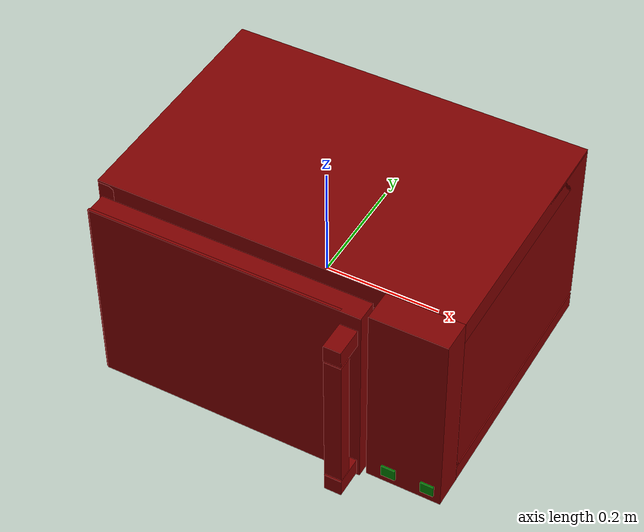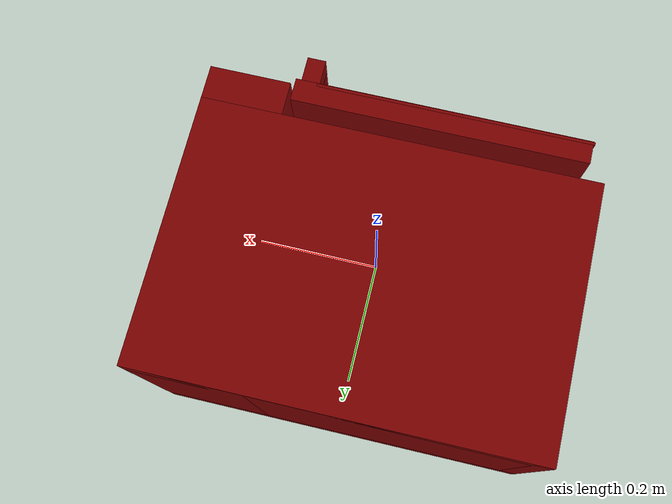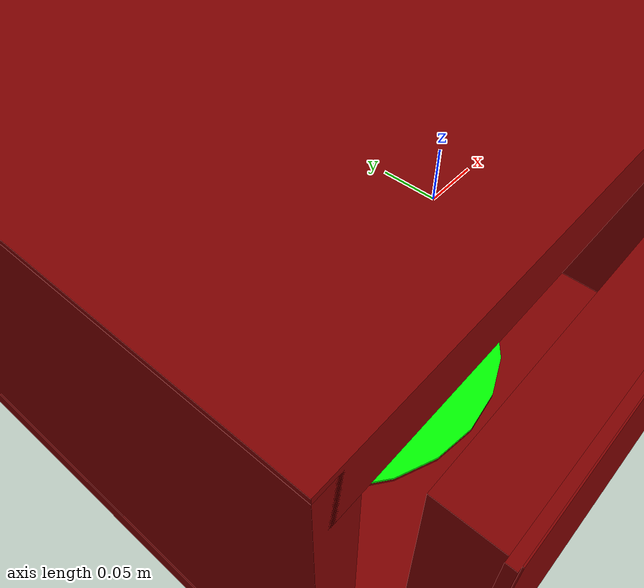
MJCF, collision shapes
<?xml version='1.0' encoding='UTF-8'?>
<mujoco model="model">
  <option timestep="0.002" gravity="0.0 0.0 -9.81"/>
  <compiler angle="radian"/>
  <asset>
    <mesh file="visuals/door.obj" name="door_vis"/>
    <mesh file="visuals/door_Clear.obj" name="door_Clear_vis"/>
    <mesh file="visuals/Body001.obj" name="Body001_vis"/>
    <mesh file="visuals/Disc001.obj" name="Disc001_vis"/>
    <texture file="visuals/T_BC001.png" name="Body001_material" type="2d"/>
    <material name="Body001_material" rgba="1 1 1 1.0" texture="Body001_material" shininess="1" specular="1"/>
    <texture file="visuals/T_BC001.png" name="door_material" type="2d"/>
    <material name="door_material" rgba="1 1 1 1.0" texture="door_material" shininess="1" specular="1"/>
    <material name="door_Clear_material" rgba="0.03637922927737236 0.03637922927737236 0.03637922927737236 0.800000011920929" shininess="0.7047244310379028" specular="0.3103448502657381"/>
    <texture file="visuals/T_BC001.png" name="Disc001_material" type="2d"/>
    <material name="Disc001_material" rgba="1 1 1 1.0" texture="Disc001_material" shininess="0.5" specular="0.5"/>
  </asset>
  <default>
    <default class="visual">
      <geom conaffinity="0" contype="0" group="1" type="mesh"/>
    </default>
    <default class="collision">
      <geom group="0" rgba="0.5 0 0 0.5"/>
    </default>
    <default class="spawn">
      <geom group="0" rgba="1 1 1 0.5" contype="0" conaffinity="0"/>
      <site group="0" rgba="1 1 1 0.5"/>
    </default>
    <default class="region">
      <geom group="1" conaffinity="0" contype="0" rgba="0 1 0 0"/>
    </default>
  </default>
  <worldbody>
    <body>
      <body name="object">
        <geom class="collision" type="cylinder" pos="-0.07808402180671692 0.04299849271774292 -0.13833405077457428" size="0.15710455179214478 0.0011974592925980687" quat="1.0 0.0 0.0 0.0" name="tray" rgba="0 1 0 0.5"/>
        <geom class="collision" type="box" pos="0.22878843545913696 -0.21626487374305725 -0.15165823698043823" size="0.01247582957148552 0.0015773557825013995 0.010913694277405739" quat="1.0 0.0 0.0 0.0" name="start_button" rgba="0.0 0.5 0 0.5"/>
        <geom class="collision" type="box" pos="0.2963750958442688 -0.2161865234375 -0.15118809044361115" size="0.011523760855197906 0.0015773564809933305 0.010913698934018612" quat="1.0 0.0 0.0 0.0" name="stop_button" rgba="0.0 0.5 0 0.5"/>
        <geom mesh="Body001_vis" type="mesh" solimp="0.998 0.998 0.001" solref="0.001 1" friction="0.95 0.3 0.1" class="visual" material="Body001_material"/>
        <geom class="collision" type="box" pos="6.190574275422023e-09 0.05818231776356697 0.1580052524805069" size="0.3191259503364563 0.21738018095493317 0.020074661821126938" quat="1.0 0.0 0.0 0.0"/>
        <geom class="collision" type="box" pos="6.190574275422023e-09 0.05818231776356697 -0.16239355504512787" size="0.3191259503364563 0.21738018095493317 0.015686236321926117" quat="1.0 0.0 0.0 0.0"/>
        <geom class="collision" type="box" pos="-0.305146187543869 0.05818231776356697 0.016211148351430893" size="0.013979763723909855 0.21738018095493317 0.1574881672859192" quat="1.0 0.0 0.0 0.0"/>
        <geom class="collision" type="box" pos="0.22637836635112762 0.05818231776356697 0.016211148351430893" size="0.09274760633707047 0.21738018095493317 0.1574881672859192" quat="1.0 0.0 0.0 0.0"/>
        <geom class="collision" type="box" pos="0.2538146674633026 -0.1830071657896042 2.7939677238464355e-09" size="0.06527737528085709 0.030979912728071213 0.17807987332344055" quat="1.0 0.0 0.0 0.0"/>
        <geom class="collision" type="box" pos="-0.07744839042425156 0.2603451907634735 0.016211148351430893" size="0.21326063573360443 0.01521731074899435 0.1574881672859192" quat="1.0 0.0 0.0 0.0"/>
        <body name="door">
          <joint axis="0.0 0.0 1.0" pos="-0.2890901267528534 -0.19431369006633759 4.6566128730773926e-09" limited="true" name="microjoint" range="-1.5707963267948966 0.0" type="hinge" damping="1" frictionloss="1" armature=".01" stiffness="0.05"/>
          <geom mesh="door_vis" type="mesh" solimp="0.998 0.998 0.001" solref="0.001 1" friction="0.95 0.3 0.1" class="visual" material="door_material"/>
          <geom class="collision" type="box" pos="-0.07377028465270996 -0.22054128348827362 0.0008762441575527191" size="0.221286341547966 0.0024352208711206913 0.17720365524291992" quat="1.0 0.0 0.0 0.0"/>
          <geom class="collision" type="box" pos="-0.055128756910562515 -0.20511437952518463 1.964159309864044e-06" size="0.23738709092140198 0.018569378182291985 0.17807140946388245" quat="1.0 0.0 0.0 0.0" name="door_main"/>
          <geom class="collision" type="box" pos="0.163129061460495 -0.2634081244468689 -0.009086178615689278" size="0.015099392272531986 0.012315240688621998 0.12794749438762665" quat="1.0 0.0 0.0 0.0" name="door_handle_main"/>
          <geom class="collision" type="box" pos="0.163129061460495 -0.2514316737651825 0.13820987939834595" size="0.015099392272531986 0.025233617052435875 0.01582106202840805" quat="1.0 0.0 0.0 0.0"/>
          <geom class="collision" type="box" pos="0.163129061460495 -0.2514316737651825 -0.1557300090789795" size="0.015099392272531986 0.025233617052435875 0.01582106202840805" quat="1.0 0.0 0.0 0.0"/>
          <body name="door_Clear">
            <geom mesh="door_Clear_vis" type="mesh" solimp="0.998 0.998 0.001" solref="0.001 1" friction="0.95 0.3 0.1" class="visual" material="door_Clear_material"/>
            <geom class="collision" type="box" pos="-0.07377028465270996 -0.22054128348827362 0.0008762441575527191" size="0.221286341547966 0.0024352208711206913 0.17720365524291992" quat="1.0 0.0 0.0 0.0"/>
          </body>
        </body>
        <body name="Disc001">
          <joint axis="0.0 0.0 1.0" pos="-0.07798805832862854 0.042780958116054535 -0.1396191418170929" limited="false" name="Disc001_joint" range="0 360" type="hinge" damping="1" frictionloss="1" armature=".01" stiffness="0.05"/>
          <geom mesh="Disc001_vis" type="mesh" solimp="0.998 0.998 0.001" solref="0.001 1" friction="0.95 0.3 0.1" class="visual" material="Disc001_material"/>
          <geom class="collision" type="cylinder" pos="-0.07808402180671692 0.04299849271774292 -0.14102722704410553" size="0.15710455179214478 0.0011974601075053215" quat="1.0 0.0 0.0 0.0"/>
        </body>
        <geom class="region" name="reg_int" type="box" pos="-0.07841207459568977 0.022232159972190857 -0.005202151834964752" size="0.2013953568637371 0.1789717206954956 0.13293432241678238"/>
        <geom class="region" name="reg_main" type="box" pos="0.0 0.025596119463443756 0.0" size="0.3201259503364563 0.2509663233757019 0.17907990312576294"/>
      <geom class="region" name="reg_tray" type="cylinder" pos="-0.07808402180671692 0.04299849271774292 -0.004702210450079292" size="0.15710455179214478 0.13143438103189692"/></body>
    </body>
  </worldbody>
  <actuator>
    <motor name="microjoint_actuator" joint="microjoint" gear="10"/>
    <motor name="Disc001_joint_actuator" joint="Disc001_joint" gear="10"/>
  </actuator>
</mujoco>
